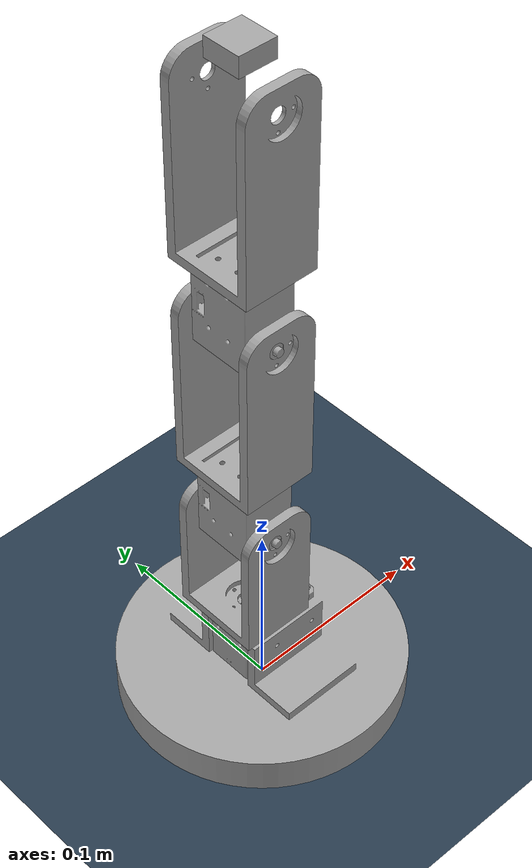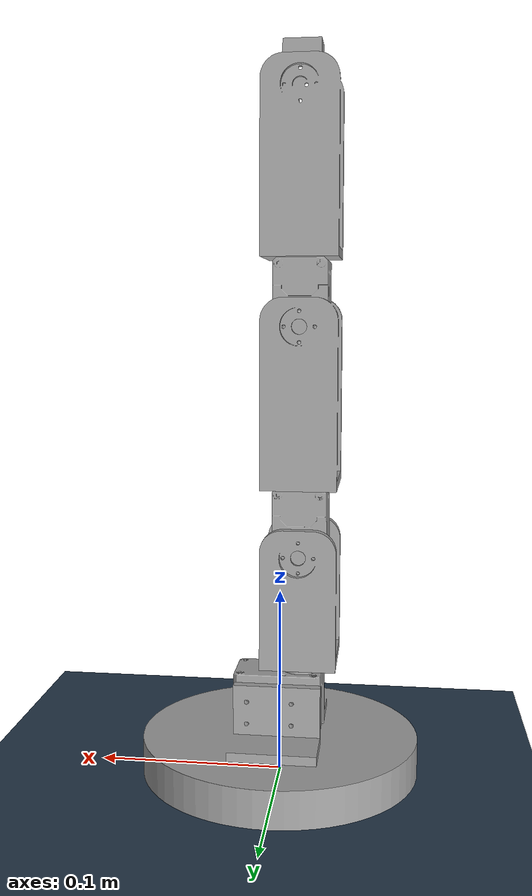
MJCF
<mujoco model="ur3e">
  <compiler inertiafromgeom="true" angle="degree" autolimits="true"/>
  <default>
    <geom condim="1" material="matgeom"/>
  </default>
  <option timestep=".005" iterations="50" tolerance="1e-16" solver="Newton" jacobian="dense" cone="pyramidal">
    <flag contact="enable"/>
  </option>

  <asset>
    <texture type="skybox" builtin="gradient" rgb1="0.3 0.5 0.7" rgb2="0 0 0" width="512" height="512"/>
    <texture name="texplane" type="2d" builtin="checker" rgb1=".2 .3 .4" rgb2=".1 0.15 0.2" width="512" height="512" mark="cross" markrgb=".8 .8 .8"/>
    <texture name="texgeom" type="cube" builtin="flat" mark="cross" width="127" height="1278"
        rgb1="0.8 0.8 0.8" rgb2="0.6 0.6 0.6" markrgb="1 1 1" random="0.01"/>
    <material name="matplane" reflectance="0.3" texture="texplane" texrepeat="1 1" texuniform="true"/>
    <material name="matgeom" texture="texgeom" texuniform="true" rgba="0.8 0.8 0.8 1"/>

    <mesh name="BASE" file="stls/Base.STL"/>
    <mesh name="LINK1" file="stls/Link1.STL"/>
    <mesh name="LINK2" file="stls/Link2.STL"/>
    <mesh name="LINK3" file="stls/Link3.STL"/>
    <mesh name="DYNM" file="stls/XH430.STL"/>
  </asset>

  <worldbody>
    <geom name="floor" pos="0 0 0" size="0 0 .25" type="plane" material="matplane" condim="3"/>
    <light name="spotlight" mode="targetbodycom" target="base" pos="0 -1 2"/>
    <body name="base" pos="0 0 0.001">
      <geom type="mesh" mesh="BASE"/>
      <body name="ACT1" pos="-.01125 0 .039" euler="0 0 90">
        <geom type="mesh" mesh="DYNM"/>
        <body name="link1" pos="0 0 .0234" euler="0 0 0">
          <joint name="shoulder_joint" type="hinge" pos=".0 .0 .01" axis="0 0 1" />
          <geom type="mesh" mesh="LINK1"/>
          <body name='ACT2' pos=".0 0 .0605" euler="0 -90 90">
            <joint name="elbow_joint" type="hinge" pos=".0 .0 .0" axis="0 0 1" />
            <geom type="mesh" mesh="DYNM"/>
            <body name="link2" pos=".0 -.03525 .0" euler="90 0 90">
              <geom type="mesh" mesh="LINK2"/>
              <body name="ACT3" pos=".0 0 .085" euler="0 90 -90">
                <joint name="wrinkle_joint" type="hinge" pos=".0 .0 .0" axis="0 0 1" />
                <geom type="mesh" mesh="DYNM"/>
                <body name="link3" pos="0 -.03525 0" euler="90 0 90">
                  <geom type="mesh" mesh="LINK3"/>
                  <body name="E_E" pos="0 0 0.105" euler="0 0 0">
                    <geom type="box" size="0.01 0.01 0.005"/>
                  </body>
                </body>
              </body>
            </body>
          </body>
        </body>
      </body>
    </body>
  </worldbody>

  <actuator>
    <motor name="act_shoulder" joint="shoulder_joint" gear = "1" ctrllimited="true" ctrlrange="-1 1"/>
    <motor name="act_elbow" joint="elbow_joint" gear = "1" ctrllimited="true" ctrlrange="-1 1"/>
    <motor name="act_wrinkle" joint="wrinkle_joint" gear = "1" ctrllimited="true" ctrlrange="-1 1"/>
  </actuator>

</mujoco>
